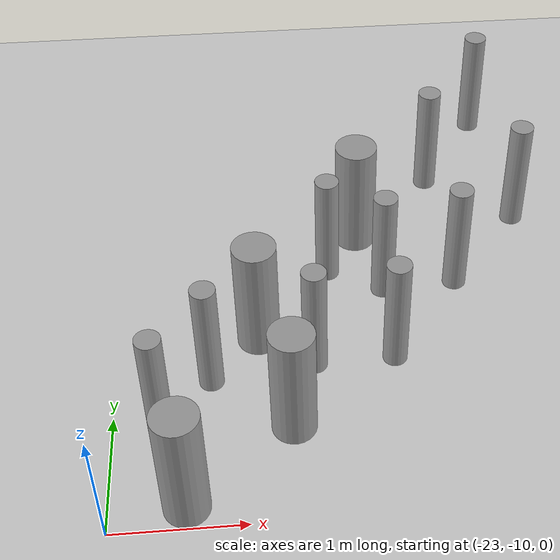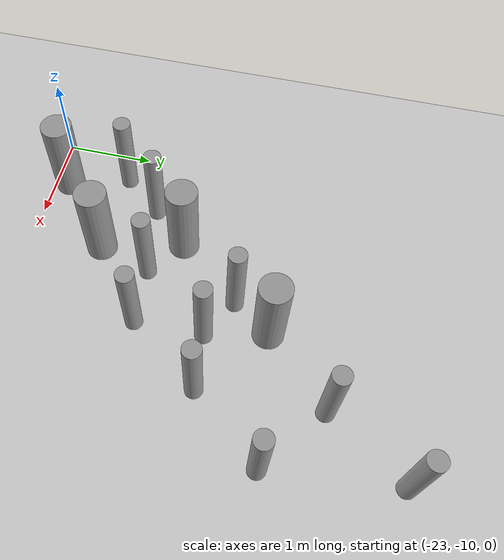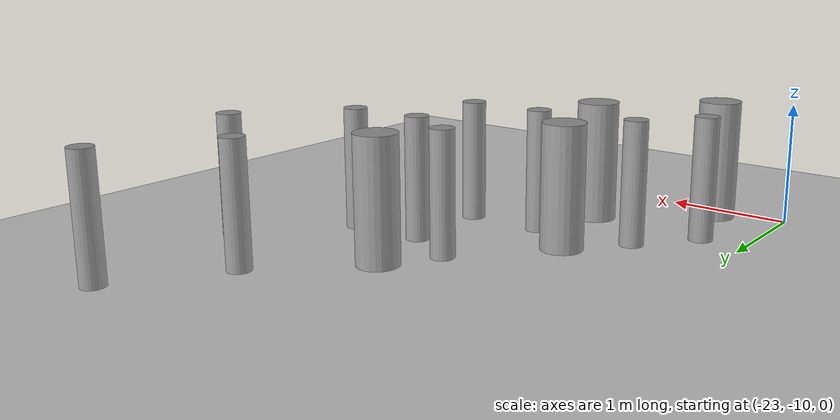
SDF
<sdf version="1.6">
 <world name="default">
  <model name="ground_plane">
   <static>1</static>
   <link name="link">
    <collision name="collision">
     <geometry><plane><normal>0 0 1</normal><size>100 100</size></plane></geometry>
     <surface><friction><ode><mu>100</mu><mu2>50</mu2></ode></friction></surface>
    </collision>
    <visual name="visual">
     <cast_shadows>0</cast_shadows>
     <geometry><plane><normal>0 0 1</normal><size>100 100</size></plane></geometry>
     <material>
      <script><uri>file://media/materials/scripts/gazebo.material</uri><name>Gazebo/Grey</name></script>
     </material>
    </visual>
   </link>
  </model>
  <model name="cyl_wall_clone_clone_1_clone_1_clone_clone_0_clone_1_clone_0">
   <link name="link_0">
    <pose>-2.73893 -0.366465 0 0 -0 0</pose>
    <inertial>
     <mass>0.0374993</mass>
     <inertia>
      <ixx>0.00321281</ixx>
      <ixy>0</ixy>
      <ixz>0</ixz>
      <iyy>0.00321281</iyy>
      <iyz>0</iyz>
      <izz>0.000175774</izz>
     </inertia>
    </inertial>
    <visual name="visual">
     <geometry><cylinder><radius>0.0968661</radius><length>1</length></cylinder></geometry>
     <material>
      <lighting>1</lighting>
      <script><uri>file://media/materials/scripts/gazebo.material</uri><name>Gazebo/Grey</name></script>
      <ambient>0.3 0.3 0.3 1</ambient>
      <diffuse>0.7 0.7 0.7 1</diffuse>
      <specular>0.01 0.01 0.01 1</specular>
      <emissive>0 0 0 1</emissive>
     </material>
    </visual>
    <collision name="collision">
     <geometry><cylinder><radius>0.096866</radius><length>1</length></cylinder></geometry>
     <surface>
      <friction>
       <ode><mu>1</mu><mu2>1</mu2><fdir1>0 0 0</fdir1><slip1>0</slip1><slip2>0</slip2></ode>
       <torsional>
        <coefficient>1</coefficient>
        <patch_radius>0</patch_radius>
        <surface_radius>0</surface_radius>
        <use_patch_radius>1</use_patch_radius>
        <ode><slip>0</slip></ode>
       </torsional>
      </friction>
      <bounce><restitution_coefficient>0</restitution_coefficient><threshold>1e+06</threshold></bounce>
      <contact>
       <collide_without_contact>0</collide_without_contact>
       <collide_without_contact_bitmask>1</collide_without_contact_bitmask>
       <collide_bitmask>1</collide_bitmask>
       <ode>
        <soft_cfm>0</soft_cfm>
        <soft_erp>0.2</soft_erp>
        <kp>1e+13</kp>
        <kd>1</kd>
        <max_vel>0.01</max_vel>
        <min_depth>0</min_depth>
       </ode>
       <bullet>
        <split_impulse>1</split_impulse>
        <split_impulse_penetration_threshold>-0.01</split_impulse_penetration_threshold>
        <soft_cfm>0</soft_cfm>
        <soft_erp>0.2</soft_erp>
        <kp>1e+13</kp>
        <kd>1</kd>
       </bullet>
      </contact>
     </surface>
    </collision>
   </link>
   <link name="link_0_clone">
    <pose>-1.73893 0.61877 0 0 -0 0</pose>
    <inertial>
     <mass>0.0374993</mass>
     <inertia>
      <ixx>0.00321281</ixx>
      <ixy>0</ixy>
      <ixz>0</ixz>
      <iyy>0.00321281</iyy>
      <iyz>0</iyz>
      <izz>0.000175774</izz>
     </inertia>
    </inertial>
    <visual name="visual">
     <geometry><cylinder><radius>0.0968661</radius><length>1</length></cylinder></geometry>
     <material>
      <lighting>1</lighting>
      <script><uri>file://media/materials/scripts/gazebo.material</uri><name>Gazebo/Grey</name></script>
      <ambient>0.3 0.3 0.3 1</ambient>
      <diffuse>0.7 0.7 0.7 1</diffuse>
      <specular>0.01 0.01 0.01 1</specular>
      <emissive>0 0 0 1</emissive>
      <shader type="pixel"/>
     </material>
    </visual>
    <collision name="collision">
     <geometry><cylinder><radius>0.096866</radius><length>1</length></cylinder></geometry>
     <surface>
      <friction>
       <ode><mu>1</mu><mu2>1</mu2><fdir1>0 0 0</fdir1><slip1>0</slip1><slip2>0</slip2></ode>
       <torsional>
        <coefficient>1</coefficient>
        <patch_radius>0</patch_radius>
        <surface_radius>0</surface_radius>
        <use_patch_radius>1</use_patch_radius>
        <ode><slip>0</slip></ode>
       </torsional>
      </friction>
      <bounce><restitution_coefficient>0</restitution_coefficient><threshold>1e+06</threshold></bounce>
      <contact>
       <collide_without_contact>0</collide_without_contact>
       <collide_without_contact_bitmask>1</collide_without_contact_bitmask>
       <collide_bitmask>1</collide_bitmask>
       <ode>
        <soft_cfm>0</soft_cfm>
        <soft_erp>0.2</soft_erp>
        <kp>1e+13</kp>
        <kd>1</kd>
        <max_vel>0.01</max_vel>
        <min_depth>0</min_depth>
       </ode>
       <bullet>
        <split_impulse>1</split_impulse>
        <split_impulse_penetration_threshold>-0.01</split_impulse_penetration_threshold>
        <soft_cfm>0</soft_cfm>
        <soft_erp>0.2</soft_erp>
        <kp>1e+13</kp>
        <kd>1</kd>
       </bullet>
      </contact>
     </surface>
    </collision>
   </link>
   <link name="link_0_clone_clone">
    <pose>-0.327073 0.143919 0 0 -0 0</pose>
    <inertial>
     <mass>0.0374993</mass>
     <inertia>
      <ixx>0.00321281</ixx>
      <ixy>0</ixy>
      <ixz>0</ixz>
      <iyy>0.00321281</iyy>
      <iyz>0</iyz>
      <izz>0.000175774</izz>
     </inertia>
    </inertial>
    <visual name="visual">
     <geometry><cylinder><radius>0.0968661</radius><length>1</length></cylinder></geometry>
     <material>
      <lighting>1</lighting>
      <script><uri>file://media/materials/scripts/gazebo.material</uri><name>Gazebo/Grey</name></script>
      <ambient>0.3 0.3 0.3 1</ambient>
      <diffuse>0.7 0.7 0.7 1</diffuse>
      <specular>0.01 0.01 0.01 1</specular>
      <emissive>0 0 0 1</emissive>
      <shader type="pixel"/>
     </material>
    </visual>
    <collision name="collision">
     <geometry><cylinder><radius>0.096866</radius><length>1</length></cylinder></geometry>
     <surface>
      <friction>
       <ode><mu>1</mu><mu2>1</mu2><fdir1>0 0 0</fdir1><slip1>0</slip1><slip2>0</slip2></ode>
       <torsional>
        <coefficient>1</coefficient>
        <patch_radius>0</patch_radius>
        <surface_radius>0</surface_radius>
        <use_patch_radius>1</use_patch_radius>
        <ode><slip>0</slip></ode>
       </torsional>
      </friction>
      <bounce><restitution_coefficient>0</restitution_coefficient><threshold>1e+06</threshold></bounce>
      <contact>
       <collide_without_contact>0</collide_without_contact>
       <collide_without_contact_bitmask>1</collide_without_contact_bitmask>
       <collide_bitmask>1</collide_bitmask>
       <ode>
        <soft_cfm>0</soft_cfm>
        <soft_erp>0.2</soft_erp>
        <kp>1e+13</kp>
        <kd>1</kd>
        <max_vel>0.01</max_vel>
        <min_depth>0</min_depth>
       </ode>
       <bullet>
        <split_impulse>1</split_impulse>
        <split_impulse_penetration_threshold>-0.01</split_impulse_penetration_threshold>
        <soft_cfm>0</soft_cfm>
        <soft_erp>0.2</soft_erp>
        <kp>1e+13</kp>
        <kd>1</kd>
       </bullet>
      </contact>
     </surface>
    </collision>
   </link>
   <link name="link_0_clone_clone_0">
    <pose>1.26107 -0.419359 0 0 -0 0</pose>
    <inertial>
     <mass>0.0374993</mass>
     <inertia>
      <ixx>0.00321281</ixx>
      <ixy>0</ixy>
      <ixz>0</ixz>
      <iyy>0.00321281</iyy>
      <iyz>0</iyz>
      <izz>0.000175774</izz>
     </inertia>
    </inertial>
    <visual name="visual">
     <geometry><cylinder><radius>0.0968661</radius><length>1</length></cylinder></geometry>
     <material>
      <lighting>1</lighting>
      <script><uri>file://media/materials/scripts/gazebo.material</uri><name>Gazebo/Grey</name></script>
      <ambient>0.3 0.3 0.3 1</ambient>
      <diffuse>0.7 0.7 0.7 1</diffuse>
      <specular>0.01 0.01 0.01 1</specular>
      <emissive>0 0 0 1</emissive>
      <shader type="pixel"/>
     </material>
    </visual>
    <collision name="collision">
     <geometry><cylinder><radius>0.096866</radius><length>1</length></cylinder></geometry>
     <surface>
      <friction>
       <ode><mu>1</mu><mu2>1</mu2><fdir1>0 0 0</fdir1><slip1>0</slip1><slip2>0</slip2></ode>
       <torsional>
        <coefficient>1</coefficient>
        <patch_radius>0</patch_radius>
        <surface_radius>0</surface_radius>
        <use_patch_radius>1</use_patch_radius>
        <ode><slip>0</slip></ode>
       </torsional>
      </friction>
      <bounce><restitution_coefficient>0</restitution_coefficient><threshold>1e+06</threshold></bounce>
      <contact>
       <collide_without_contact>0</collide_without_contact>
       <collide_without_contact_bitmask>1</collide_without_contact_bitmask>
       <collide_bitmask>1</collide_bitmask>
       <ode>
        <soft_cfm>0</soft_cfm>
        <soft_erp>0.2</soft_erp>
        <kp>1e+13</kp>
        <kd>1</kd>
        <max_vel>0.01</max_vel>
        <min_depth>0</min_depth>
       </ode>
       <bullet>
        <split_impulse>1</split_impulse>
        <split_impulse_penetration_threshold>-0.01</split_impulse_penetration_threshold>
        <soft_cfm>0</soft_cfm>
        <soft_erp>0.2</soft_erp>
        <kp>1e+13</kp>
        <kd>1</kd>
       </bullet>
      </contact>
     </surface>
    </collision>
   </link>
   <link name="link_0_clone_clone_1">
    <pose>-1.73893 -0.277168 0 0 -0 0</pose>
    <inertial>
     <mass>0.0374993</mass>
     <inertia>
      <ixx>0.00321281</ixx>
      <ixy>0</ixy>
      <ixz>0</ixz>
      <iyy>0.00321281</iyy>
      <iyz>0</iyz>
      <izz>0.000175774</izz>
     </inertia>
    </inertial>
    <visual name="visual">
     <geometry><cylinder><radius>0.0968661</radius><length>1</length></cylinder></geometry>
     <material>
      <lighting>1</lighting>
      <script><uri>file://media/materials/scripts/gazebo.material</uri><name>Gazebo/Grey</name></script>
      <ambient>0.3 0.3 0.3 1</ambient>
      <diffuse>0.7 0.7 0.7 1</diffuse>
      <specular>0.01 0.01 0.01 1</specular>
      <emissive>0 0 0 1</emissive>
      <shader type="pixel"/>
     </material>
    </visual>
    <collision name="collision">
     <geometry><cylinder><radius>0.096866</radius><length>1</length></cylinder></geometry>
     <surface>
      <friction>
       <ode><mu>1</mu><mu2>1</mu2><fdir1>0 0 0</fdir1><slip1>0</slip1><slip2>0</slip2></ode>
       <torsional>
        <coefficient>1</coefficient>
        <patch_radius>0</patch_radius>
        <surface_radius>0</surface_radius>
        <use_patch_radius>1</use_patch_radius>
        <ode><slip>0</slip></ode>
       </torsional>
      </friction>
      <bounce><restitution_coefficient>0</restitution_coefficient><threshold>1e+06</threshold></bounce>
      <contact>
       <collide_without_contact>0</collide_without_contact>
       <collide_without_contact_bitmask>1</collide_without_contact_bitmask>
       <collide_bitmask>1</collide_bitmask>
       <ode>
        <soft_cfm>0</soft_cfm>
        <soft_erp>0.2</soft_erp>
        <kp>1e+13</kp>
        <kd>1</kd>
        <max_vel>0.01</max_vel>
        <min_depth>0</min_depth>
       </ode>
       <bullet>
        <split_impulse>1</split_impulse>
        <split_impulse_penetration_threshold>-0.01</split_impulse_penetration_threshold>
        <soft_cfm>0</soft_cfm>
        <soft_erp>0.2</soft_erp>
        <kp>1e+13</kp>
        <kd>1</kd>
       </bullet>
      </contact>
     </surface>
    </collision>
   </link>
   <link name="link_0_clone_clone_2">
    <pose>-0.738934 0.593961 0 0 -0 0</pose>
    <inertial>
     <mass>0.0374993</mass>
     <inertia>
      <ixx>0.00321281</ixx>
      <ixy>0</ixy>
      <ixz>0</ixz>
      <iyy>0.00321281</iyy>
      <iyz>0</iyz>
      <izz>0.000175774</izz>
     </inertia>
    </inertial>
    <visual name="visual">
     <geometry><cylinder><radius>0.0968661</radius><length>1</length></cylinder></geometry>
     <material>
      <lighting>1</lighting>
      <script><uri>file://media/materials/scripts/gazebo.material</uri><name>Gazebo/Grey</name></script>
      <ambient>0.3 0.3 0.3 1</ambient>
      <diffuse>0.7 0.7 0.7 1</diffuse>
      <specular>0.01 0.01 0.01 1</specular>
      <emissive>0 0 0 1</emissive>
      <shader type="pixel"/>
     </material>
    </visual>
    <collision name="collision">
     <geometry><cylinder><radius>0.096866</radius><length>1</length></cylinder></geometry>
     <surface>
      <friction>
       <ode><mu>1</mu><mu2>1</mu2><fdir1>0 0 0</fdir1><slip1>0</slip1><slip2>0</slip2></ode>
       <torsional>
        <coefficient>1</coefficient>
        <patch_radius>0</patch_radius>
        <surface_radius>0</surface_radius>
        <use_patch_radius>1</use_patch_radius>
        <ode><slip>0</slip></ode>
       </torsional>
      </friction>
      <bounce><restitution_coefficient>0</restitution_coefficient><threshold>1e+06</threshold></bounce>
      <contact>
       <collide_without_contact>0</collide_without_contact>
       <collide_without_contact_bitmask>1</collide_without_contact_bitmask>
       <collide_bitmask>1</collide_bitmask>
       <ode>
        <soft_cfm>0</soft_cfm>
        <soft_erp>0.2</soft_erp>
        <kp>1e+13</kp>
        <kd>1</kd>
        <max_vel>0.01</max_vel>
        <min_depth>0</min_depth>
       </ode>
       <bullet>
        <split_impulse>1</split_impulse>
        <split_impulse_penetration_threshold>-0.01</split_impulse_penetration_threshold>
        <soft_cfm>0</soft_cfm>
        <soft_erp>0.2</soft_erp>
        <kp>1e+13</kp>
        <kd>1</kd>
       </bullet>
      </contact>
     </surface>
    </collision>
   </link>
   <link name="link_0_clone_clone_3">
    <pose>0.261066 0.624849 0 0 -0 0</pose>
    <inertial>
     <mass>0.0374993</mass>
     <inertia>
      <ixx>0.00321281</ixx>
      <ixy>0</ixy>
      <ixz>0</ixz>
      <iyy>0.00321281</iyy>
      <iyz>0</iyz>
      <izz>0.000175774</izz>
     </inertia>
    </inertial>
    <visual name="visual">
     <geometry><cylinder><radius>0.0968661</radius><length>1</length></cylinder></geometry>
     <material>
      <lighting>1</lighting>
      <script><uri>file://media/materials/scripts/gazebo.material</uri><name>Gazebo/Grey</name></script>
      <ambient>0.3 0.3 0.3 1</ambient>
      <diffuse>0.7 0.7 0.7 1</diffuse>
      <specular>0.01 0.01 0.01 1</specular>
      <emissive>0 0 0 1</emissive>
      <shader type="pixel"/>
     </material>
    </visual>
    <collision name="collision">
     <geometry><cylinder><radius>0.096866</radius><length>1</length></cylinder></geometry>
     <surface>
      <friction>
       <ode><mu>1</mu><mu2>1</mu2><fdir1>0 0 0</fdir1><slip1>0</slip1><slip2>0</slip2></ode>
       <torsional>
        <coefficient>1</coefficient>
        <patch_radius>0</patch_radius>
        <surface_radius>0</surface_radius>
        <use_patch_radius>1</use_patch_radius>
        <ode><slip>0</slip></ode>
       </torsional>
      </friction>
      <bounce><restitution_coefficient>0</restitution_coefficient><threshold>1e+06</threshold></bounce>
      <contact>
       <collide_without_contact>0</collide_without_contact>
       <collide_without_contact_bitmask>1</collide_without_contact_bitmask>
       <collide_bitmask>1</collide_bitmask>
       <ode>
        <soft_cfm>0</soft_cfm>
        <soft_erp>0.2</soft_erp>
        <kp>1e+13</kp>
        <kd>1</kd>
        <max_vel>0.01</max_vel>
        <min_depth>0</min_depth>
       </ode>
       <bullet>
        <split_impulse>1</split_impulse>
        <split_impulse_penetration_threshold>-0.01</split_impulse_penetration_threshold>
        <soft_cfm>0</soft_cfm>
        <soft_erp>0.2</soft_erp>
        <kp>1e+13</kp>
        <kd>1</kd>
       </bullet>
      </contact>
     </surface>
    </collision>
   </link>
   <link name="link_0_clone_clone_4">
    <pose>-0.239049 -0.353105 0 0 -0 0</pose>
    <inertial>
     <mass>0.0374993</mass>
     <inertia>
      <ixx>0.00321281</ixx>
      <ixy>0</ixy>
      <ixz>0</ixz>
      <iyy>0.00321281</iyy>
      <iyz>0</iyz>
      <izz>0.000175774</izz>
     </inertia>
    </inertial>
    <visual name="visual">
     <geometry><cylinder><radius>0.0968661</radius><length>1</length></cylinder></geometry>
     <material>
      <lighting>1</lighting>
      <script><uri>file://media/materials/scripts/gazebo.material</uri><name>Gazebo/Grey</name></script>
      <ambient>0.3 0.3 0.3 1</ambient>
      <diffuse>0.7 0.7 0.7 1</diffuse>
      <specular>0.01 0.01 0.01 1</specular>
      <emissive>0 0 0 1</emissive>
      <shader type="pixel"/>
     </material>
    </visual>
    <collision name="collision">
     <geometry><cylinder><radius>0.096866</radius><length>1</length></cylinder></geometry>
     <surface>
      <friction>
       <ode><mu>1</mu><mu2>1</mu2><fdir1>0 0 0</fdir1><slip1>0</slip1><slip2>0</slip2></ode>
       <torsional>
        <coefficient>1</coefficient>
        <patch_radius>0</patch_radius>
        <surface_radius>0</surface_radius>
        <use_patch_radius>1</use_patch_radius>
        <ode><slip>0</slip></ode>
       </torsional>
      </friction>
      <bounce><restitution_coefficient>0</restitution_coefficient><threshold>1e+06</threshold></bounce>
      <contact>
       <collide_without_contact>0</collide_without_contact>
       <collide_without_contact_bitmask>1</collide_without_contact_bitmask>
       <collide_bitmask>1</collide_bitmask>
       <ode>
        <soft_cfm>0</soft_cfm>
        <soft_erp>0.2</soft_erp>
        <kp>1e+13</kp>
        <kd>1</kd>
        <max_vel>0.01</max_vel>
        <min_depth>0</min_depth>
       </ode>
       <bullet>
        <split_impulse>1</split_impulse>
        <split_impulse_penetration_threshold>-0.01</split_impulse_penetration_threshold>
        <soft_cfm>0</soft_cfm>
        <soft_erp>0.2</soft_erp>
        <kp>1e+13</kp>
        <kd>1</kd>
       </bullet>
      </contact>
     </surface>
    </collision>
   </link>
   <link name="link_0_clone_clone_5">
    <pose>0.672792 0.143919 0 0 -0 0</pose>
    <inertial>
     <mass>0.0374993</mass>
     <inertia>
      <ixx>0.00321281</ixx>
      <ixy>0</ixy>
      <ixz>0</ixz>
      <iyy>0.00321281</iyy>
      <iyz>0</iyz>
      <izz>0.000175774</izz>
     </inertia>
    </inertial>
    <visual name="visual">
     <geometry><cylinder><radius>0.0968661</radius><length>1</length></cylinder></geometry>
     <material>
      <lighting>1</lighting>
      <script><uri>file://media/materials/scripts/gazebo.material</uri><name>Gazebo/Grey</name></script>
      <ambient>0.3 0.3 0.3 1</ambient>
      <diffuse>0.7 0.7 0.7 1</diffuse>
      <specular>0.01 0.01 0.01 1</specular>
      <emissive>0 0 0 1</emissive>
      <shader type="pixel"/>
     </material>
    </visual>
    <collision name="collision">
     <geometry><cylinder><radius>0.096866</radius><length>1</length></cylinder></geometry>
     <surface>
      <friction>
       <ode><mu>1</mu><mu2>1</mu2><fdir1>0 0 0</fdir1><slip1>0</slip1><slip2>0</slip2></ode>
       <torsional>
        <coefficient>1</coefficient>
        <patch_radius>0</patch_radius>
        <surface_radius>0</surface_radius>
        <use_patch_radius>1</use_patch_radius>
        <ode><slip>0</slip></ode>
       </torsional>
      </friction>
      <bounce><restitution_coefficient>0</restitution_coefficient><threshold>1e+06</threshold></bounce>
      <contact>
       <collide_without_contact>0</collide_without_contact>
       <collide_without_contact_bitmask>1</collide_without_contact_bitmask>
       <collide_bitmask>1</collide_bitmask>
       <ode>
        <soft_cfm>0</soft_cfm>
        <soft_erp>0.2</soft_erp>
        <kp>1e+13</kp>
        <kd>1</kd>
        <max_vel>0.01</max_vel>
        <min_depth>0</min_depth>
       </ode>
       <bullet>
        <split_impulse>1</split_impulse>
        <split_impulse_penetration_threshold>-0.01</split_impulse_penetration_threshold>
        <soft_cfm>0</soft_cfm>
        <soft_erp>0.2</soft_erp>
        <kp>1e+13</kp>
        <kd>1</kd>
       </bullet>
      </contact>
     </surface>
    </collision>
   </link>
   <link name="link_0_clone_clone_6">
    <pose>1.84596 -0.433423 0 0 -0 0</pose>
    <inertial>
     <mass>0.0374993</mass>
     <inertia>
      <ixx>0.00321281</ixx>
      <ixy>0</ixy>
      <ixz>0</ixz>
      <iyy>0.00321281</iyy>
      <iyz>0</iyz>
      <izz>0.000175774</izz>
     </inertia>
    </inertial>
    <visual name="visual">
     <geometry><cylinder><radius>0.0968661</radius><length>1</length></cylinder></geometry>
     <material>
      <lighting>1</lighting>
      <script><uri>file://media/materials/scripts/gazebo.material</uri><name>Gazebo/Grey</name></script>
      <ambient>0.3 0.3 0.3 1</ambient>
      <diffuse>0.7 0.7 0.7 1</diffuse>
      <specular>0.01 0.01 0.01 1</specular>
      <emissive>0 0 0 1</emissive>
      <shader type="pixel"/>
     </material>
    </visual>
    <collision name="collision">
     <geometry><cylinder><radius>0.096866</radius><length>1</length></cylinder></geometry>
     <surface>
      <friction>
       <ode><mu>1</mu><mu2>1</mu2><fdir1>0 0 0</fdir1><slip1>0</slip1><slip2>0</slip2></ode>
       <torsional>
        <coefficient>1</coefficient>
        <patch_radius>0</patch_radius>
        <surface_radius>0</surface_radius>
        <use_patch_radius>1</use_patch_radius>
        <ode><slip>0</slip></ode>
       </torsional>
      </friction>
      <bounce><restitution_coefficient>0</restitution_coefficient><threshold>1e+06</threshold></bounce>
      <contact>
       <collide_without_contact>0</collide_without_contact>
       <collide_without_contact_bitmask>1</collide_without_contact_bitmask>
       <collide_bitmask>1</collide_bitmask>
       <ode>
        <soft_cfm>0</soft_cfm>
        <soft_erp>0.2</soft_erp>
        <kp>1e+13</kp>
        <kd>1</kd>
        <max_vel>0.01</max_vel>
        <min_depth>0</min_depth>
       </ode>
       <bullet>
        <split_impulse>1</split_impulse>
        <split_impulse_penetration_threshold>-0.01</split_impulse_penetration_threshold>
        <soft_cfm>0</soft_cfm>
        <soft_erp>0.2</soft_erp>
        <kp>1e+13</kp>
        <kd>1</kd>
       </bullet>
      </contact>
     </surface>
    </collision>
   </link>
   <link name="link_1">
    <pose>-0.738934 -0.397931 0 0 -0 0</pose>
    <inertial>
     <mass>0.117398</mass>
     <inertia>
      <ixx>0.0106445</ixx>
      <ixy>0</ixy>
      <ixz>0</ixz>
      <iyy>0.0106445</iyy>
      <iyz>0</iyz>
      <izz>0.00172278</izz>
     </inertia>
    </inertial>
    <visual name="visual">
     <geometry><cylinder><radius>0.171317</radius><length>1</length></cylinder></geometry>
     <material>
      <lighting>1</lighting>
      <script><uri>file://media/materials/scripts/gazebo.material</uri><name>Gazebo/Grey</name></script>
      <ambient>0.3 0.3 0.3 1</ambient>
      <diffuse>0.7 0.7 0.7 1</diffuse>
      <specular>0.01 0.01 0.01 1</specular>
      <emissive>0 0 0 1</emissive>
     </material>
    </visual>
    <collision name="collision">
     <geometry><cylinder><radius>0.171317</radius><length>1</length></cylinder></geometry>
     <surface>
      <friction>
       <ode><mu>1</mu><mu2>1</mu2><fdir1>0 0 0</fdir1><slip1>0</slip1><slip2>0</slip2></ode>
       <torsional>
        <coefficient>1</coefficient>
        <patch_radius>0</patch_radius>
        <surface_radius>0</surface_radius>
        <use_patch_radius>1</use_patch_radius>
        <ode><slip>0</slip></ode>
       </torsional>
      </friction>
      <bounce><restitution_coefficient>0</restitution_coefficient><threshold>1e+06</threshold></bounce>
      <contact>
       <collide_without_contact>0</collide_without_contact>
       <collide_without_contact_bitmask>1</collide_without_contact_bitmask>
       <collide_bitmask>1</collide_bitmask>
       <ode>
        <soft_cfm>0</soft_cfm>
        <soft_erp>0.2</soft_erp>
        <kp>1e+13</kp>
        <kd>1</kd>
        <max_vel>0.01</max_vel>
        <min_depth>0</min_depth>
       </ode>
       <bullet>
        <split_impulse>1</split_impulse>
        <split_impulse_penetration_threshold>-0.01</split_impulse_penetration_threshold>
        <soft_cfm>0</soft_cfm>
        <soft_erp>0.2</soft_erp>
        <kp>1e+13</kp>
        <kd>1</kd>
       </bullet>
      </contact>
     </surface>
    </collision>
   </link>
   <link name="link_1_clone">
    <pose>0.697784 -0.380861 0 0 -0 0</pose>
    <inertial>
     <mass>0.117398</mass>
     <inertia>
      <ixx>0.0106445</ixx>
      <ixy>0</ixy>
      <ixz>0</ixz>
      <iyy>0.0106445</iyy>
      <iyz>0</iyz>
      <izz>0.00172278</izz>
     </inertia>
    </inertial>
    <visual name="visual">
     <geometry><cylinder><radius>0.171317</radius><length>1</length></cylinder></geometry>
     <material>
      <lighting>1</lighting>
      <script><uri>file://media/materials/scripts/gazebo.material</uri><name>Gazebo/Grey</name></script>
      <ambient>0.3 0.3 0.3 1</ambient>
      <diffuse>0.7 0.7 0.7 1</diffuse>
      <specular>0.01 0.01 0.01 1</specular>
      <emissive>0 0 0 1</emissive>
      <shader type="pixel"/>
     </material>
    </visual>
    <collision name="collision">
     <geometry><cylinder><radius>0.171317</radius><length>1</length></cylinder></geometry>
     <surface>
      <friction>
       <ode><mu>1</mu><mu2>1</mu2><fdir1>0 0 0</fdir1><slip1>0</slip1><slip2>0</slip2></ode>
       <torsional>
        <coefficient>1</coefficient>
        <patch_radius>0</patch_radius>
        <surface_radius>0</surface_radius>
        <use_patch_radius>1</use_patch_radius>
        <ode><slip>0</slip></ode>
       </torsional>
      </friction>
      <bounce><restitution_coefficient>0</restitution_coefficient><threshold>1e+06</threshold></bounce>
      <contact>
       <collide_without_contact>0</collide_without_contact>
       <collide_without_contact_bitmask>1</collide_without_contact_bitmask>
       <collide_bitmask>1</collide_bitmask>
       <ode>
        <soft_cfm>0</soft_cfm>
        <soft_erp>0.2</soft_erp>
        <kp>1e+13</kp>
        <kd>1</kd>
        <max_vel>0.01</max_vel>
        <min_depth>0</min_depth>
       </ode>
       <bullet>
        <split_impulse>1</split_impulse>
        <split_impulse_penetration_threshold>-0.01</split_impulse_penetration_threshold>
        <soft_cfm>0</soft_cfm>
        <soft_erp>0.2</soft_erp>
        <kp>1e+13</kp>
        <kd>1</kd>
       </bullet>
      </contact>
     </surface>
    </collision>
   </link>
   <link name="link_1_clone_0">
    <pose>1.26107 0.358974 0 0 -0 0</pose>
    <inertial>
     <mass>0.117398</mass>
     <inertia>
      <ixx>0.0106445</ixx>
      <ixy>0</ixy>
      <ixz>0</ixz>
      <iyy>0.0106445</iyy>
      <iyz>0</iyz>
      <izz>0.00172278</izz>
     </inertia>
    </inertial>
    <visual name="visual">
     <geometry><cylinder><radius>0.171317</radius><length>1</length></cylinder></geometry>
     <material>
      <lighting>1</lighting>
      <script><uri>file://media/materials/scripts/gazebo.material</uri><name>Gazebo/Grey</name></script>
      <ambient>0.3 0.3 0.3 1</ambient>
      <diffuse>0.7 0.7 0.7 1</diffuse>
      <specular>0.01 0.01 0.01 1</specular>
      <emissive>0 0 0 1</emissive>
      <shader type="pixel"/>
     </material>
    </visual>
    <collision name="collision">
     <geometry><cylinder><radius>0.171317</radius><length>1</length></cylinder></geometry>
     <surface>
      <friction>
       <ode><mu>1</mu><mu2>1</mu2><fdir1>0 0 0</fdir1><slip1>0</slip1><slip2>0</slip2></ode>
       <torsional>
        <coefficient>1</coefficient>
        <patch_radius>0</patch_radius>
        <surface_radius>0</surface_radius>
        <use_patch_radius>1</use_patch_radius>
        <ode><slip>0</slip></ode>
       </torsional>
      </friction>
      <bounce><restitution_coefficient>0</restitution_coefficient><threshold>1e+06</threshold></bounce>
      <contact>
       <collide_without_contact>0</collide_without_contact>
       <collide_without_contact_bitmask>1</collide_without_contact_bitmask>
       <collide_bitmask>1</collide_bitmask>
       <ode>
        <soft_cfm>0</soft_cfm>
        <soft_erp>0.2</soft_erp>
        <kp>1e+13</kp>
        <kd>1</kd>
        <max_vel>0.01</max_vel>
        <min_depth>0</min_depth>
       </ode>
       <bullet>
        <split_impulse>1</split_impulse>
        <split_impulse_penetration_threshold>-0.01</split_impulse_penetration_threshold>
        <soft_cfm>0</soft_cfm>
        <soft_erp>0.2</soft_erp>
        <kp>1e+13</kp>
        <kd>1</kd>
       </bullet>
      </contact>
     </surface>
    </collision>
   </link>
   <link name="link_1_clone_1">
    <pose>2.26107 0.143919 0 0 -0 0</pose>
    <inertial>
     <mass>0.117398</mass>
     <inertia>
      <ixx>0.0106445</ixx>
      <ixy>0</ixy>
      <ixz>0</ixz>
      <iyy>0.0106445</iyy>
      <iyz>0</iyz>
      <izz>0.00172278</izz>
     </inertia>
    </inertial>
    <visual name="visual">
     <geometry><cylinder><radius>0.171317</radius><length>1</length></cylinder></geometry>
     <material>
      <lighting>1</lighting>
      <script><uri>file://media/materials/scripts/gazebo.material</uri><name>Gazebo/Grey</name></script>
      <ambient>0.3 0.3 0.3 1</ambient>
      <diffuse>0.7 0.7 0.7 1</diffuse>
      <specular>0.01 0.01 0.01 1</specular>
      <emissive>0 0 0 1</emissive>
      <shader type="pixel"/>
     </material>
    </visual>
    <collision name="collision">
     <geometry><cylinder><radius>0.171317</radius><length>1</length></cylinder></geometry>
     <surface>
      <friction>
       <ode><mu>1</mu><mu2>1</mu2><fdir1>0 0 0</fdir1><slip1>0</slip1><slip2>0</slip2></ode>
       <torsional>
        <coefficient>1</coefficient>
        <patch_radius>0</patch_radius>
        <surface_radius>0</surface_radius>
        <use_patch_radius>1</use_patch_radius>
        <ode><slip>0</slip></ode>
       </torsional>
      </friction>
      <bounce><restitution_coefficient>0</restitution_coefficient><threshold>1e+06</threshold></bounce>
      <contact>
       <collide_without_contact>0</collide_without_contact>
       <collide_without_contact_bitmask>1</collide_without_contact_bitmask>
       <collide_bitmask>1</collide_bitmask>
       <ode>
        <soft_cfm>0</soft_cfm>
        <soft_erp>0.2</soft_erp>
        <kp>1e+13</kp>
        <kd>1</kd>
        <max_vel>0.01</max_vel>
        <min_depth>0</min_depth>
       </ode>
       <bullet>
        <split_impulse>1</split_impulse>
        <split_impulse_penetration_threshold>-0.01</split_impulse_penetration_threshold>
        <soft_cfm>0</soft_cfm>
        <soft_erp>0.2</soft_erp>
        <kp>1e+13</kp>
        <kd>1</kd>
       </bullet>
      </contact>
     </surface>
    </collision>
   </link>
   <static>1</static>
   <pose>-21.1537 -7.95821 0.5 0 0 -2.24061</pose>
  </model>
 </world>
</sdf>
